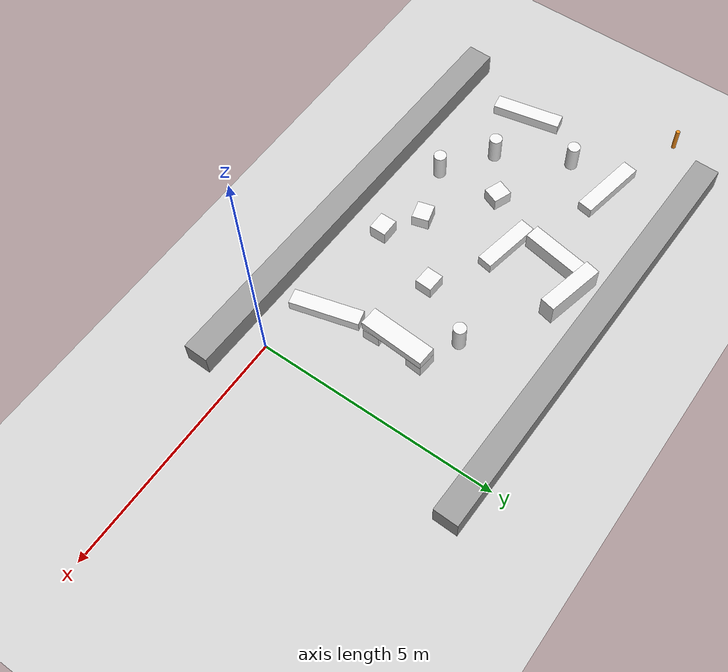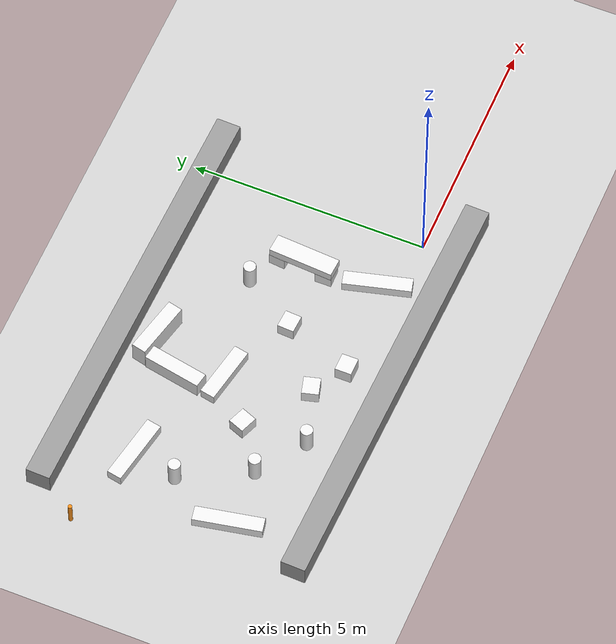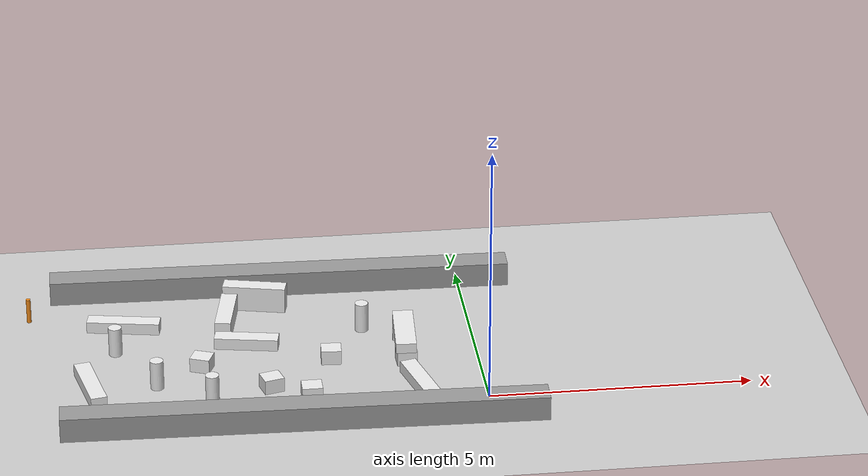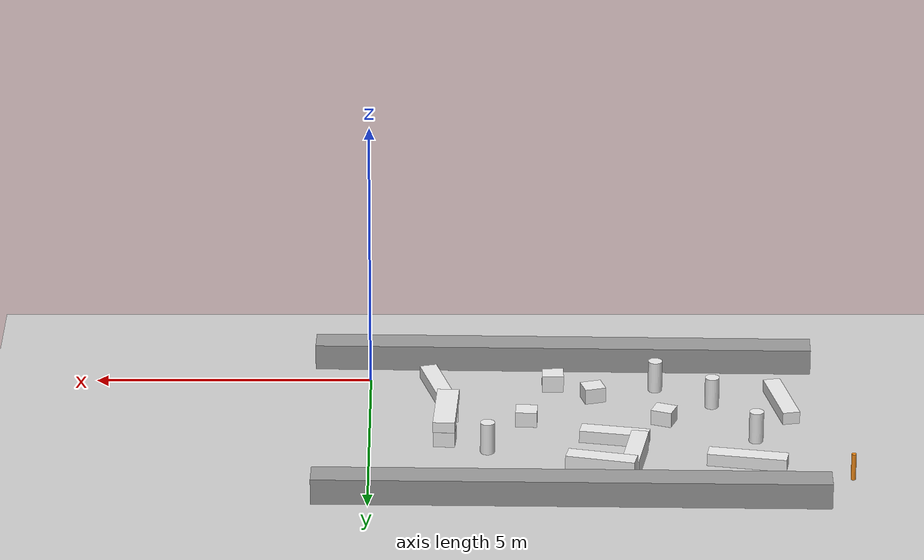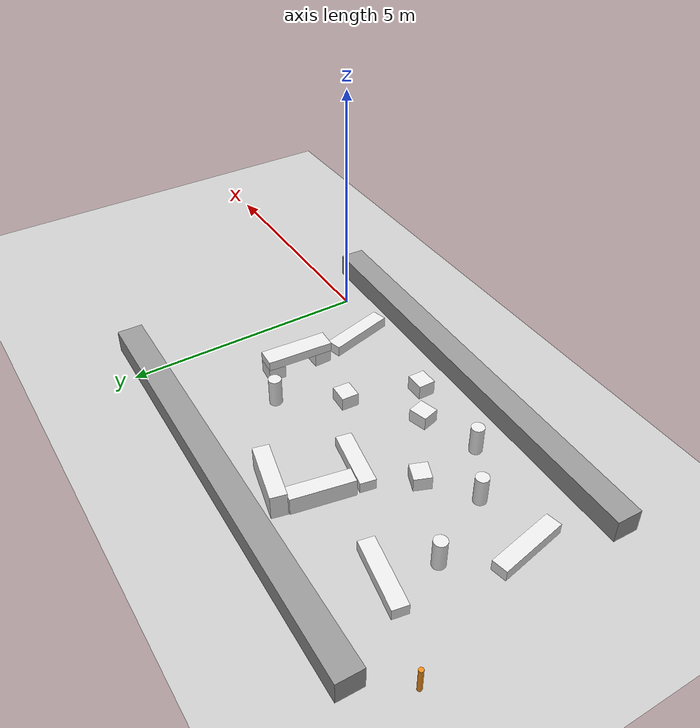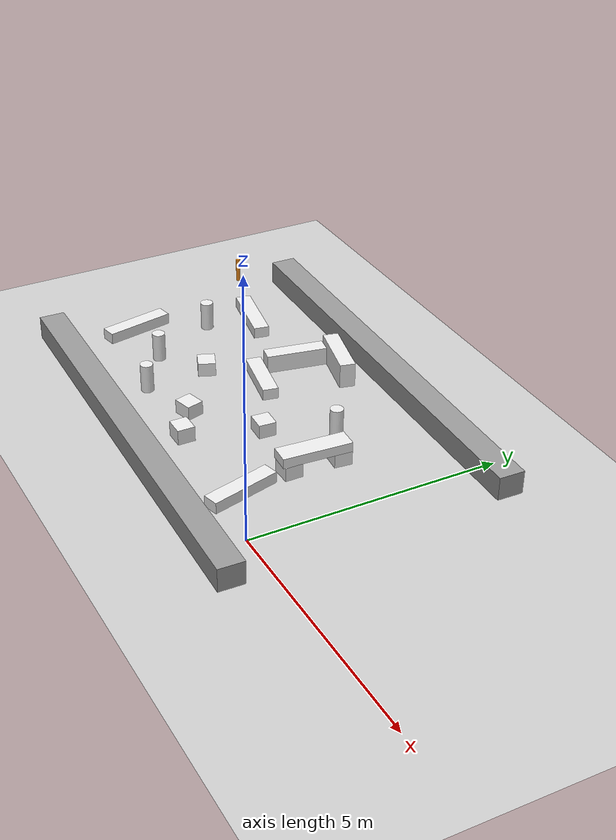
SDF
<sdf version="1.6">
 <world name="default">
  <light name="sun" type="directional">
   <pose>0 0 10 0 -0 0</pose>
   <diffuse>0.8 0.8 0.8 1</diffuse>
   <specular>0.2 0.2 0.2 1</specular>
   <attenuation>
    <range>1000</range>
    <constant>0.9</constant>
    <linear>0.01</linear>
    <quadratic>0.001</quadratic>
   </attenuation>
   <direction>-0.5 0.1 -0.9</direction>
  </light>
  <model name="ground_plane">
   <static>1</static>
   <link name="link">
    <collision name="collision">
     <geometry><plane><normal>0 0 1</normal><size>100 100</size></plane></geometry>
     <surface>
      <contact><collide_bitmask>65535</collide_bitmask></contact>
      <friction><ode><mu>100</mu><mu2>50</mu2></ode></friction>
     </surface>
    </collision>
    <visual name="visual">
     <cast_shadows>0</cast_shadows>
     <geometry><plane><normal>0 0 1</normal><size>100 100</size></plane></geometry>
     <material>
      <script><uri>file://media/materials/scripts/gazebo.material</uri><name>Gazebo/Grey</name></script>
     </material>
    </visual>
   </link>
  </model>
  <gravity>0 0 -9.8</gravity>
  <magnetic_field>6e-06 2.3e-05 -4.2e-05</magnetic_field>
  <atmosphere type="adiabatic"/>
  <physics name="default_physics" default="0" type="ode">
   <max_step_size>0.001</max_step_size>
   <real_time_factor>1</real_time_factor>
   <real_time_update_rate>1000</real_time_update_rate>
  </physics>
  <scene><ambient>0.4 0.4 0.4 1</ambient><background>0.7 0.7 0.7 1</background><shadows>1</shadows></scene>
  <spherical_coordinates>
   <surface_model>EARTH_WGS84</surface_model>
   <latitude_deg>0</latitude_deg>
   <longitude_deg>0</longitude_deg>
   <elevation>0</elevation>
   <heading_deg>0</heading_deg>
  </spherical_coordinates>
  <model name="obs1">
   <pose>-1.37189 2.02589 0.380458 -1.1e-05 9e-06 -0.062138</pose>
   <link name="link">
    <inertial>
     <mass>1</mass>
     <inertia>
      <ixx>0.166667</ixx>
      <ixy>0</ixy>
      <ixz>0</ixz>
      <iyy>0.166667</iyy>
      <iyz>0</iyz>
      <izz>0.166667</izz>
     </inertia>
    </inertial>
    <collision name="collision"><geometry><box><size>0.394537 1.37104 0.195964</size></box></geometry></collision>
    <visual name="visual">
     <geometry><box><size>0.394536 1.37104 0.195964</size></box></geometry>
     <material>
      <script><name>Gazebo/White</name><uri>file://media/materials/scripts/gazebo.material</uri></script>
     </material>
    </visual>
   </link>
  </model>
  <model name="obs2">
   <pose>-1.39211 1.53862 0.141242 0 -0 0.019118</pose>
   <link name="link">
    <inertial>
     <mass>1</mass>
     <inertia>
      <ixx>0.166667</ixx>
      <ixy>0</ixy>
      <ixz>0</ixz>
      <iyy>0.166667</iyy>
      <iyz>0</iyz>
      <izz>0.166667</izz>
     </inertia>
    </inertial>
    <collision name="collision">
     <geometry><box><size>0.385668 0.349582 0.282485</size></box></geometry>
    </collision>
    <visual name="visual">
     <geometry><box><size>0.385668 0.349582 0.282485</size></box></geometry>
     <material>
      <script><name>Gazebo/White</name><uri>file://media/materials/scripts/gazebo.material</uri></script>
     </material>
    </visual>
   </link>
  </model>
  <model name="obs3">
   <pose>-1.34775 2.54231 0.141241 0 6e-06 -0.09327</pose>
   <link name="link">
    <inertial>
     <mass>1</mass>
     <inertia>
      <ixx>0.166667</ixx>
      <ixy>0</ixy>
      <ixz>0</ixz>
      <iyy>0.166667</iyy>
      <iyz>0</iyz>
      <izz>0.166667</izz>
     </inertia>
    </inertial>
    <collision name="collision">
     <geometry><box><size>0.385668 0.349582 0.282485</size></box></geometry>
    </collision>
    <visual name="visual">
     <geometry><box><size>0.385668 0.349582 0.282485</size></box></geometry>
     <material>
      <script><name>Gazebo/White</name><uri>file://media/materials/scripts/gazebo.material</uri></script>
     </material>
    </visual>
   </link>
  </model>
  <model name="obs6">
   <pose>-3.318 0.303374 0.154262 0 -0 0.000159</pose>
   <link name="link">
    <inertial>
     <mass>1</mass>
     <inertia>
      <ixx>0.166667</ixx>
      <ixy>0</ixy>
      <ixz>0</ixz>
      <iyy>0.166667</iyy>
      <iyz>0</iyz>
      <izz>0.166667</izz>
     </inertia>
    </inertial>
    <collision name="collision">
     <geometry><box><size>0.385668 0.349582 0.308524</size></box></geometry>
    </collision>
    <visual name="visual">
     <geometry><box><size>0.385668 0.349582 0.308524</size></box></geometry>
     <material>
      <script><name>Gazebo/White</name><uri>file://media/materials/scripts/gazebo.material</uri></script>
     </material>
    </visual>
   </link>
  </model>
  <model name="obs7">
   <pose>-4.03514 0.765267 0.141242 0 -0 0.269066</pose>
   <link name="link">
    <inertial>
     <mass>1</mass>
     <inertia>
      <ixx>0.166667</ixx>
      <ixy>0</ixy>
      <ixz>0</ixz>
      <iyy>0.166667</iyy>
      <iyz>0</iyz>
      <izz>0.166667</izz>
     </inertia>
    </inertial>
    <collision name="collision">
     <geometry><box><size>0.385668 0.349582 0.282485</size></box></geometry>
    </collision>
    <visual name="visual">
     <geometry><box><size>0.385668 0.349582 0.282485</size></box></geometry>
     <material>
      <script><name>Gazebo/White</name><uri>file://media/materials/scripts/gazebo.material</uri></script>
     </material>
    </visual>
   </link>
  </model>
  <model name="obs8">
   <pose>-2.81599 1.74335 0.141242 0 0 -0.053597</pose>
   <link name="link">
    <inertial>
     <mass>1</mass>
     <inertia>
      <ixx>0.166667</ixx>
      <ixy>0</ixy>
      <ixz>0</ixz>
      <iyy>0.166667</iyy>
      <iyz>0</iyz>
      <izz>0.166667</izz>
     </inertia>
    </inertial>
    <collision name="collision">
     <geometry><box><size>0.385668 0.349582 0.282485</size></box></geometry>
    </collision>
    <visual name="visual">
     <geometry><box><size>0.385668 0.349582 0.282485</size></box></geometry>
     <material>
      <script><name>Gazebo/White</name><uri>file://media/materials/scripts/gazebo.material</uri></script>
     </material>
    </visual>
   </link>
  </model>
  <model name="obs9">
   <pose>-5.28652 1.70892 0.141242 0 0 -0.372347</pose>
   <link name="link">
    <inertial>
     <mass>1</mass>
     <inertia>
      <ixx>0.166667</ixx>
      <ixy>0</ixy>
      <ixz>0</ixz>
      <iyy>0.166667</iyy>
      <iyz>0</iyz>
      <izz>0.166667</izz>
     </inertia>
    </inertial>
    <collision name="collision">
     <geometry><box><size>0.385668 0.349582 0.282485</size></box></geometry>
    </collision>
    <visual name="visual">
     <geometry><box><size>0.385668 0.349582 0.282485</size></box></geometry>
     <material>
      <script><name>Gazebo/White</name><uri>file://media/materials/scripts/gazebo.material</uri></script>
     </material>
    </visual>
   </link>
  </model>
  <model name="obs14">
   <pose>-2.10534 2.90376 0.292011 3e-06 1e-06 -0.269822</pose>
   <link name="link">
    <inertial>
     <mass>1</mass>
     <inertia><ixx>0.145833</ixx><ixy>0</ixy><ixz>0</ixz><iyy>0.145833</iyy><iyz>0</iyz><izz>0.125</izz></inertia>
    </inertial>
    <collision name="collision">
     <geometry><cylinder><radius>0.129386</radius><length>0.584039</length></cylinder></geometry>
    </collision>
    <visual name="visual">
     <geometry><cylinder><radius>0.129386</radius><length>0.584039</length></cylinder></geometry>
     <material>
      <script><name>Gazebo/White</name><uri>file://media/materials/scripts/gazebo.material</uri></script>
     </material>
    </visual>
   </link>
  </model>
  <model name="wall_1">
   <pose>-3.52176 -0.64232 0.236056 1e-06 0 -0.02603</pose>
   <link name="link">
    <inertial>
     <mass>50</mass>
     <inertia><ixx>50</ixx><ixy>0</ixy><ixz>0</ixz><iyy>50</iyy><iyz>0</iyz><izz>50</izz></inertia>
    </inertial>
    <collision name="collision"><geometry><box><size>9.06571 0.513318 0.472112</size></box></geometry></collision>
    <visual name="visual">
     <geometry><box><size>9.06571 0.513318 0.472112</size></box></geometry>
     <material>
      <script><name>Gazebo/Grey</name><uri>file://media/materials/scripts/gazebo.material</uri></script>
     </material>
    </visual>
   </link>
  </model>
  <model name="wall_2">
   <pose>-3.54394 4.77645 0.236056 1e-06 0 -0.021449</pose>
   <link name="link">
    <inertial>
     <mass>50</mass>
     <inertia><ixx>50</ixx><ixy>0</ixy><ixz>0</ixz><iyy>50</iyy><iyz>0</iyz><izz>50</izz></inertia>
    </inertial>
    <collision name="collision"><geometry><box><size>9.06571 0.513318 0.472112</size></box></geometry></collision>
    <visual name="visual">
     <geometry><box><size>9.06571 0.513318 0.472112</size></box></geometry>
     <material>
      <script><name>Gazebo/Grey</name><uri>file://media/materials/scripts/gazebo.material</uri></script>
     </material>
    </visual>
   </link>
  </model>
  <model name="obs4">
   <pose>-1.22767 0.494973 0.113521 0 -0 0.259164</pose>
   <link name="link">
    <inertial>
     <mass>1</mass>
     <inertia>
      <ixx>0.166667</ixx>
      <ixy>0</ixy>
      <ixz>0</ixz>
      <iyy>0.166667</iyy>
      <iyz>0</iyz>
      <izz>0.166667</izz>
     </inertia>
    </inertial>
    <collision name="collision"><geometry><box><size>0.313001 1.41374 0.227042</size></box></geometry></collision>
    <visual name="visual">
     <geometry><box><size>0.313001 1.41374 0.227042</size></box></geometry>
     <material>
      <script><name>Gazebo/White</name><uri>file://media/materials/scripts/gazebo.material</uri></script>
     </material>
    </visual>
   </link>
  </model>
  <model name="obs5">
   <pose>-4.37611 2.48914 0.113521 0 -0 1.38696</pose>
   <link name="link">
    <inertial>
     <mass>1</mass>
     <inertia>
      <ixx>0.166667</ixx>
      <ixy>0</ixy>
      <ixz>0</ixz>
      <iyy>0.166667</iyy>
      <iyz>0</iyz>
      <izz>0.166667</izz>
     </inertia>
    </inertial>
    <collision name="collision"><geometry><box><size>0.313001 1.2327 0.227042</size></box></geometry></collision>
    <visual name="visual">
     <geometry><box><size>0.313001 1.2327 0.227042</size></box></geometry>
     <material>
      <script><name>Gazebo/White</name><uri>file://media/materials/scripts/gazebo.material</uri></script>
     </material>
    </visual>
   </link>
  </model>
  <model name="obs12">
   <pose>-4.0906 4.06372 0.252518 0 -4e-06 1.34416</pose>
   <link name="link">
    <inertial>
     <mass>1</mass>
     <inertia>
      <ixx>0.166667</ixx>
      <ixy>0</ixy>
      <ixz>0</ixz>
      <iyy>0.166667</iyy>
      <iyz>0</iyz>
      <izz>0.166667</izz>
     </inertia>
    </inertial>
    <collision name="collision"><geometry><box><size>0.313001 1.2327 0.505037</size></box></geometry></collision>
    <visual name="visual">
     <geometry><box><size>0.313001 1.2327 0.505037</size></box></geometry>
     <material>
      <script><name>Gazebo/White</name><uri>file://media/materials/scripts/gazebo.material</uri></script>
     </material>
    </visual>
   </link>
  </model>
  <model name="obs13">
   <pose>-4.70357 3.40031 0.183408 0 -0 2.96015</pose>
   <link name="link">
    <inertial>
     <mass>1</mass>
     <inertia>
      <ixx>0.166667</ixx>
      <ixy>0</ixy>
      <ixz>0</ixz>
      <iyy>0.166667</iyy>
      <iyz>0</iyz>
      <izz>0.166667</izz>
     </inertia>
    </inertial>
    <collision name="collision"><geometry><box><size>0.313001 1.2327 0.366816</size></box></geometry></collision>
    <visual name="visual">
     <geometry><box><size>0.313001 1.2327 0.366816</size></box></geometry>
     <material>
      <script><name>Gazebo/White</name><uri>file://media/materials/scripts/gazebo.material</uri></script>
     </material>
    </visual>
   </link>
  </model>
  <model name="obs15">
   <pose>-5.17677 0.385074 0.29201 0 -0 0</pose>
   <link name="link">
    <inertial>
     <mass>1</mass>
     <inertia><ixx>0.145833</ixx><ixy>0</ixy><ixz>0</ixz><iyy>0.145833</iyy><iyz>0</iyz><izz>0.125</izz></inertia>
    </inertial>
    <collision name="collision">
     <geometry><cylinder><radius>0.128382</radius><length>0.584039</length></cylinder></geometry>
    </collision>
    <visual name="visual">
     <geometry><cylinder><radius>0.128382</radius><length>0.584039</length></cylinder></geometry>
     <material>
      <script><name>Gazebo/White</name><uri>file://media/materials/scripts/gazebo.material</uri></script>
     </material>
    </visual>
   </link>
  </model>
  <model name="obs16">
   <pose>-6.17621 1.069 0.292019 -0 -0 -0</pose>
   <link name="link">
    <inertial>
     <mass>1</mass>
     <inertia><ixx>0.145833</ixx><ixy>0</ixy><ixz>0</ixz><iyy>0.145833</iyy><iyz>0</iyz><izz>0.125</izz></inertia>
    </inertial>
    <collision name="collision">
     <geometry><cylinder><radius>0.128382</radius><length>0.584039</length></cylinder></geometry>
    </collision>
    <visual name="visual">
     <geometry><cylinder><radius>0.128382</radius><length>0.584039</length></cylinder></geometry>
     <material>
      <script><name>Gazebo/White</name><uri>file://media/materials/scripts/gazebo.material</uri></script>
     </material>
    </visual>
   </link>
  </model>
  <model name="obs10">
   <pose>-7.43095 1.09287 0.113521 0 -0 0.196256</pose>
   <link name="link">
    <inertial>
     <mass>1</mass>
     <inertia>
      <ixx>0.166667</ixx>
      <ixy>0</ixy>
      <ixz>0</ixz>
      <iyy>0.166667</iyy>
      <iyz>0</iyz>
      <izz>0.166667</izz>
     </inertia>
    </inertial>
    <collision name="collision"><geometry><box><size>0.313001 1.41374 0.227042</size></box></geometry></collision>
    <visual name="visual">
     <geometry><box><size>0.313001 1.41374 0.227042</size></box></geometry>
     <material>
      <script><name>Gazebo/White</name><uri>file://media/materials/scripts/gazebo.material</uri></script>
     </material>
    </visual>
   </link>
  </model>
  <model name="obs11">
   <pose>-6.69457 3.42557 0.113521 0 -0 -1.75062</pose>
   <link name="link">
    <inertial>
     <mass>1</mass>
     <inertia>
      <ixx>0.166667</ixx>
      <ixy>0</ixy>
      <ixz>0</ixz>
      <iyy>0.166667</iyy>
      <iyz>0</iyz>
      <izz>0.166667</izz>
     </inertia>
    </inertial>
    <collision name="collision"><geometry><box><size>0.313001 1.41374 0.227042</size></box></geometry></collision>
    <visual name="visual">
     <geometry><box><size>0.313001 1.41374 0.227042</size></box></geometry>
     <material>
      <script><name>Gazebo/White</name><uri>file://media/materials/scripts/gazebo.material</uri></script>
     </material>
    </visual>
   </link>
  </model>
  <model name="obs17">
   <pose>-6.89623 2.47314 0.292019 -0 -0 -0</pose>
   <link name="link">
    <inertial>
     <mass>1</mass>
     <inertia><ixx>0.145833</ixx><ixy>0</ixy><ixz>0</ixz><iyy>0.145833</iyy><iyz>0</iyz><izz>0.125</izz></inertia>
    </inertial>
    <collision name="collision">
     <geometry><cylinder><radius>0.128382</radius><length>0.584039</length></cylinder></geometry>
    </collision>
    <visual name="visual">
     <geometry><cylinder><radius>0.128382</radius><length>0.584039</length></cylinder></geometry>
     <material>
      <script><name>Gazebo/White</name><uri>file://media/materials/scripts/gazebo.material</uri></script>
     </material>
    </visual>
   </link>
  </model>
  <model name="target">
   <pose>-8.51427 3.98378 0.247858 -1e-06 -1e-06 6e-06</pose>
   <link name="target_link">
    <inertial>
     <mass>1</mass>
     <inertia><ixx>0.145833</ixx><ixy>0</ixy><ixz>0</ixz><iyy>0.145833</iyy><iyz>0</iyz><izz>0.125</izz></inertia>
    </inertial>
    <collision name="target_collision">
     <geometry><cylinder><radius>0.0431219</radius><length>0.495719</length></cylinder></geometry>
    </collision>
    <visual name="visual">
     <geometry><cylinder><radius>0.0431219</radius><length>0.495719</length></cylinder></geometry>
     <material>
      <script><name>Gazebo/Orange</name><uri>file://media/materials/scripts/gazebo.material</uri></script>
     </material>
    </visual>
   </link>
  </model>
 </world>
</sdf>
